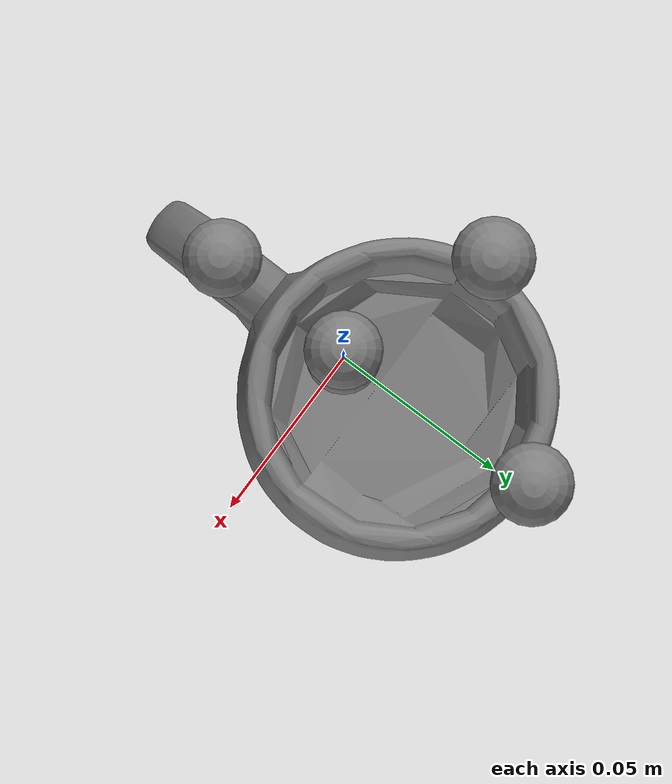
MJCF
<mujoco model="039_mug_6">
  <asset>
    <mesh name="039_mug_collision_6" file="039_mug_6.stl" scale="0.065 0.065 0.065"/>
  </asset>

  <worldbody>
<body name="039_mug_6">
  <geom name="039_mug_collision_6" type="mesh" mesh="039_mug_collision_6" />
  <site name="039_mug_6_keypoints_0" pos="0.0 0.055265730000000006 0.1073449" size="0.01"/>
  <site name="039_mug_6_keypoints_1" pos="-0.03702764000000001 0.016277495 0.107333135" size="0.01"/>
  <site name="039_mug_6_keypoints_2" pos="0.0 -0.037669905 0.061830535" size="0.01"/>
  <site name="039_mug_6_keypoints_3" pos="0.0 0.0 0.0" size="0.01"/>
  <site name="039_mug_6_keypoints_4" pos="0.0 1.7095e-05 0.056643535" size="0.01"/>
</body>
  </worldbody>
</mujoco>
